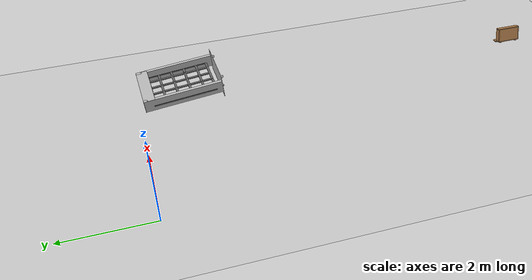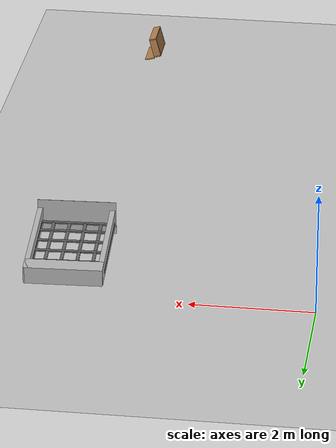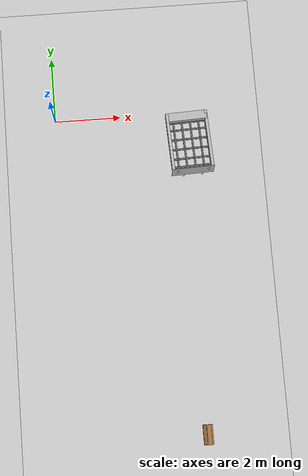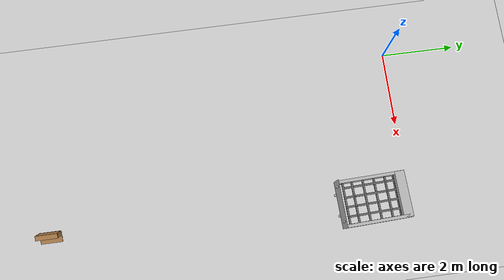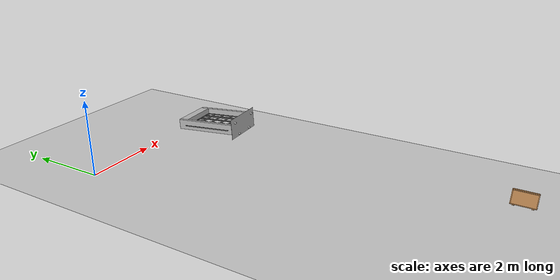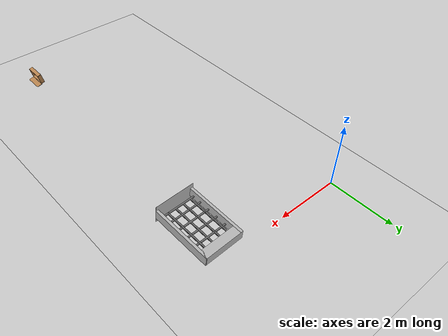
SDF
<sdf version="1.6">
 <world name="default">
  <model name="ground_plane">
   <static>1</static>
   <link name="link">
    <collision name="collision">
     <geometry><plane><normal>0 0 1</normal><size>100 100</size></plane></geometry>
     <surface><friction><ode><mu>100</mu><mu2>50</mu2></ode></friction></surface>
    </collision>
    <visual name="visual">
     <cast_shadows>0</cast_shadows>
     <geometry><plane><normal>0 0 1</normal><size>100 100</size></plane></geometry>
     <material>
      <script><uri>file://media/materials/scripts/gazebo.material</uri><name>Gazebo/Grey</name></script>
     </material>
    </visual>
   </link>
  </model>
  <model name="frc2016_portcullis">
   <link name="base">
    <inertial>
     <mass>50</mass>
     <pose>0 0 1.02941 0 -0 0</pose>
     <inertia><ixx>3.81711</ixx><ixy>0</ixy><ixz>0</ixz><iyy>4.87698</iyy><iyz>0</iyz><izz>1.6283</izz></inertia>
    </inertial>
    <visual name="platform">
     <pose>0 0 0.07284 0 -0 0</pose>
     <geometry><box><size>1.27 0.5842 0.003175</size></box></geometry>
    </visual>
    <collision name="platform">
     <pose>0 0 0.07284 0 -0 0</pose>
     <geometry><box><size>1.27 0.5842 0.003175</size></box></geometry>
    </collision>
    <visual name="left_column">
     <pose>0.59284 0 0.99042 0 -0 0</pose>
     <geometry><box><size>0.08375 0.28575 1.83198</size></box></geometry>
    </visual>
    <collision name="left_column">
     <pose>0.59284 0 0.99042 0 -0 0</pose>
     <geometry><box><size>0.08375 0.28575 1.83198</size></box></geometry>
    </collision>
    <visual name="right_column">
     <pose>-0.57759 0 0.99042 0 -0 0</pose>
     <geometry><box><size>0.08375 0.28575 1.83198</size></box></geometry>
    </visual>
    <collision name="right_column">
     <pose>-0.57759 0 0.99042 0 -0 0</pose>
     <geometry><box><size>0.08375 0.28575 1.83198</size></box></geometry>
    </collision>
    <visual name="top">
     <pose>-0.00034 0 1.77722 0 -0 0</pose>
     <geometry><box><size>1.22962 0.28575 0.26657</size></box></geometry>
    </visual>
    <collision name="top">
     <pose>-0.00034 0 1.77722 0 -0 0</pose>
     <geometry><box><size>1.22962 0.28575 0.26657</size></box></geometry>
    </collision>
    <visual name="castor1">
     <pose>-0.45651 -0.16234 0.03272 0 -0 0</pose>
     <geometry><sphere><radius>0.03272</radius></sphere></geometry>
    </visual>
    <collision name="castor1">
     <pose>-0.45651 -0.16234 0.03272 0 -0 0</pose>
     <geometry><sphere><radius>0.03272</radius></sphere></geometry>
    </collision>
    <visual name="castor2">
     <pose>-0.27883 0.21836 0.03272 0 -0 0</pose>
     <geometry><sphere><radius>0.03272</radius></sphere></geometry>
    </visual>
    <collision name="castor2">
     <pose>-0.27883 0.21836 0.03272 0 -0 0</pose>
     <geometry><sphere><radius>0.03272</radius></sphere></geometry>
    </collision>
    <visual name="castor3">
     <pose>0.28083 0.21906 0.03272 0 -0 0</pose>
     <geometry><sphere><radius>0.03272</radius></sphere></geometry>
    </visual>
    <collision name="castor3">
     <pose>0.28083 0.21906 0.03272 0 -0 0</pose>
     <geometry><sphere><radius>0.03272</radius></sphere></geometry>
    </collision>
    <visual name="castor4">
     <pose>0.45871 -0.16186 0.03272 0 -0 0</pose>
     <geometry><sphere><radius>0.03272</radius></sphere></geometry>
    </visual>
    <collision name="castor4">
     <pose>0.45871 -0.16186 0.03272 0 -0 0</pose>
     <geometry><sphere><radius>0.03272</radius></sphere></geometry>
    </collision>
   </link>
   <link name="gate">
    <pose>-0.0287 0.02885 0.93327 0 -0 0</pose>
    <inertial>
     <mass>2</mass>
     <inertia><ixx>3.81711</ixx><ixy>0</ixy><ixz>0</ixz><iyy>4.87698</iyy><iyz>0</iyz><izz>1.6283</izz></inertia>
    </inertial>
    <collision name="collision"><geometry><box><size>1.1938 0.02496 1.45732</size></box></geometry></collision>
    <visual name="horz_1">
     <pose>0 0 -0.70326 0 -0 0</pose>
     <geometry><box><size>1.1938 0.02496 0.0508</size></box></geometry>
     <material><ambient>0.4 0.4 0.4 1</ambient><diffuse>0.4 0.4 0.4 1</diffuse></material>
    </visual>
    <visual name="horz_2">
     <pose>0 0 -0.44926 0 -0 0</pose>
     <geometry><box><size>1.1938 0.02496 0.0508</size></box></geometry>
     <material><ambient>0.4 0.4 0.4 1</ambient><diffuse>0.4 0.4 0.4 1</diffuse></material>
    </visual>
    <visual name="horz_3">
     <pose>0 0 -0.14517 0 -0 0</pose>
     <geometry><box><size>1.1938 0.02496 0.0508</size></box></geometry>
     <material><ambient>0.4 0.4 0.4 1</ambient><diffuse>0.4 0.4 0.4 1</diffuse></material>
    </visual>
    <visual name="horz_4">
     <pose>0 0 0.16034 0 -0 0</pose>
     <geometry><box><size>1.1938 0.02496 0.0508</size></box></geometry>
     <material><ambient>0.4 0.4 0.4 1</ambient><diffuse>0.4 0.4 0.4 1</diffuse></material>
    </visual>
    <visual name="horz_5">
     <pose>0 0 0.46514 0 -0 0</pose>
     <geometry><box><size>1.1938 0.02496 0.0508</size></box></geometry>
     <material><ambient>0.4 0.4 0.4 1</ambient><diffuse>0.4 0.4 0.4 1</diffuse></material>
    </visual>
    <visual name="horz_6">
     <pose>0 0 0.72994 0 -0 0</pose>
     <geometry><box><size>1.1938 0.02496 0.0508</size></box></geometry>
     <material><ambient>0.4 0.4 0.4 1</ambient><diffuse>0.4 0.4 0.4 1</diffuse></material>
    </visual>
    <visual name="vert_1">
     <pose>-0.58448 0 0 0 -0 0</pose>
     <geometry><box><size>0.02495 0.02496 1.45732</size></box></geometry>
     <material><ambient>0.4 0.4 0.4 1</ambient><diffuse>0.4 0.4 0.4 1</diffuse></material>
    </visual>
    <visual name="vert_2">
     <pose>-0.38128 0 0 0 -0 0</pose>
     <geometry><box><size>0.0508 0.02496 1.45732</size></box></geometry>
     <material><ambient>0.4 0.4 0.4 1</ambient><diffuse>0.4 0.4 0.4 1</diffuse></material>
    </visual>
    <visual name="vert_3">
     <pose>-0.12728 0 0 0 -0 0</pose>
     <geometry><box><size>0.0508 0.02496 1.45732</size></box></geometry>
     <material><ambient>0.4 0.4 0.4 1</ambient><diffuse>0.4 0.4 0.4 1</diffuse></material>
    </visual>
    <visual name="vert_4">
     <pose>0.12672 0 0 0 -0 0</pose>
     <geometry><box><size>0.0508 0.02496 1.45732</size></box></geometry>
     <material><ambient>0.4 0.4 0.4 1</ambient><diffuse>0.4 0.4 0.4 1</diffuse></material>
    </visual>
    <visual name="vert_5">
     <pose>0.38072 0 0 0 -0 0</pose>
     <geometry><box><size>0.0508 0.02496 1.45732</size></box></geometry>
     <material><ambient>0.4 0.4 0.4 1</ambient><diffuse>0.4 0.4 0.4 1</diffuse></material>
    </visual>
    <visual name="vert_6">
     <pose>0.58392 0 0 0 -0 0</pose>
     <geometry><box><size>0.02495 0.02496 1.45732</size></box></geometry>
     <material><ambient>0.4 0.4 0.4 1</ambient><diffuse>0.4 0.4 0.4 1</diffuse></material>
    </visual>
   </link>
   <joint name="joint" type="prismatic">
    <parent>base</parent>
    <child>gate</child>
    <axis>
     <xyz>0 0 1</xyz>
     <limit><lower>0</lower><upper>1</upper></limit>
     <use_parent_model_frame>0</use_parent_model_frame>
     <dynamics><spring_reference>0</spring_reference><spring_stiffness>0</spring_stiffness></dynamics>
    </axis>
   </joint>
   <pose>4.05595 -1.99454 0.447169 -1.65189 -0 0.040426</pose>
  </model>
  <model name="wooden_case">
   <link name="base">
    <pose>0 0 0.024 0 -0 0</pose>
    <inertial>
     <pose>-0.022184 0 0.171592 0 -0 0</pose>
     <mass>3.96264</mass>
     <inertia>
      <ixx>0.213536</ixx>
      <ixy>0</ixy>
      <ixz>0.000779377</ixz>
      <iyy>0.0708943</iyy>
      <iyz>0</iyz>
      <izz>0.154604</izz>
     </inertia>
    </inertial>
    <collision name="collision_back">
     <pose>-0.053975 0 0.1778 0 -0 0</pose>
     <geometry><box><size>0.01905 0.5461 0.3175</size></box></geometry>
     <surface>
      <contact>
       <poissons_ratio>0.347</poissons_ratio>
       <elastic_modulus>8.8e+09</elastic_modulus>
       <ode><kp>100000</kp><kd>100</kd><max_vel>100</max_vel><min_depth>0.001</min_depth></ode>
      </contact>
      <friction>
       <torsional>
        <coefficient>1</coefficient>
        <use_patch_radius>0</use_patch_radius>
        <surface_radius>0.01</surface_radius>
       </torsional>
      </friction>
     </surface>
    </collision>
    <visual name="visual_back">
     <pose>-0.053975 0 0.1778 0 -0 0</pose>
     <geometry><box><size>0.01905 0.5461 0.3175</size></box></geometry>
     <material>
      <script><uri>file://media/materials/scripts/gazebo.material</uri><name>Gazebo/Wood</name></script>
     </material>
    </visual>
    <collision name="collision_bottom">
     <pose>0 0 0.009525 0 -0 0</pose>
     <geometry><box><size>0.127 0.5842 0.01905</size></box></geometry>
     <surface>
      <contact>
       <poissons_ratio>0.347</poissons_ratio>
       <elastic_modulus>8.8e+09</elastic_modulus>
       <ode><kp>100000</kp><kd>100</kd><max_vel>100</max_vel><min_depth>0.001</min_depth></ode>
      </contact>
      <friction>
       <torsional>
        <coefficient>1</coefficient>
        <use_patch_radius>0</use_patch_radius>
        <surface_radius>0.01</surface_radius>
       </torsional>
      </friction>
     </surface>
    </collision>
    <visual name="visual_bottom">
     <pose>0 0 0.009525 0 -0 0</pose>
     <geometry><box><size>0.127 0.5842 0.01905</size></box></geometry>
     <material>
      <script><uri>file://media/materials/scripts/gazebo.material</uri><name>Gazebo/Wood</name></script>
     </material>
    </visual>
    <collision name="collision_top">
     <pose>0 0 0.346075 0 -0 0</pose>
     <geometry><box><size>0.127 0.5842 0.01905</size></box></geometry>
     <surface>
      <contact>
       <poissons_ratio>0.347</poissons_ratio>
       <elastic_modulus>8.8e+09</elastic_modulus>
       <ode><kp>100000</kp><kd>100</kd><max_vel>100</max_vel><min_depth>0.001</min_depth></ode>
      </contact>
      <friction>
       <torsional>
        <coefficient>1</coefficient>
        <use_patch_radius>0</use_patch_radius>
        <surface_radius>0.01</surface_radius>
       </torsional>
      </friction>
     </surface>
    </collision>
    <visual name="visual_top">
     <pose>0 0 0.346075 0 -0 0</pose>
     <geometry><box><size>0.127 0.5842 0.01905</size></box></geometry>
     <material>
      <script><uri>file://media/materials/scripts/gazebo.material</uri><name>Gazebo/Wood</name></script>
     </material>
    </visual>
    <collision name="collision_left">
     <pose>0 -0.282575 0.1778 0 -0 0</pose>
     <geometry><box><size>0.127 0.01905 0.3175</size></box></geometry>
     <surface>
      <contact>
       <poissons_ratio>0.347</poissons_ratio>
       <elastic_modulus>8.8e+09</elastic_modulus>
       <ode><kp>100000</kp><kd>100</kd><max_vel>100</max_vel><min_depth>0.001</min_depth></ode>
      </contact>
      <friction>
       <torsional>
        <coefficient>1</coefficient>
        <use_patch_radius>0</use_patch_radius>
        <surface_radius>0.01</surface_radius>
       </torsional>
      </friction>
     </surface>
    </collision>
    <visual name="visual_left">
     <pose>0 -0.282575 0.1778 0 -0 0</pose>
     <geometry><box><size>0.127 0.01905 0.3175</size></box></geometry>
     <material>
      <script><uri>file://media/materials/scripts/gazebo.material</uri><name>Gazebo/Wood</name></script>
     </material>
    </visual>
    <collision name="collision_right">
     <pose>0 0.282575 0.1778 0 -0 0</pose>
     <geometry><box><size>0.127 0.01905 0.3175</size></box></geometry>
     <surface>
      <contact>
       <poissons_ratio>0.347</poissons_ratio>
       <elastic_modulus>8.8e+09</elastic_modulus>
       <ode><kp>100000</kp><kd>100</kd><max_vel>100</max_vel><min_depth>0.001</min_depth></ode>
      </contact>
      <friction>
       <torsional>
        <coefficient>1</coefficient>
        <use_patch_radius>0</use_patch_radius>
        <surface_radius>0.01</surface_radius>
       </torsional>
      </friction>
     </surface>
    </collision>
    <visual name="visual_right">
     <pose>0 0.282575 0.1778 0 -0 0</pose>
     <geometry><box><size>0.127 0.01905 0.3175</size></box></geometry>
     <material>
      <script><uri>file://media/materials/scripts/gazebo.material</uri><name>Gazebo/Wood</name></script>
     </material>
    </visual>
    <collision name="collision_block_left">
     <pose>0.0095 -0.2151 -0.012 0 -0 0</pose>
     <geometry><box><size>0.108 0.05 0.024</size></box></geometry>
     <surface>
      <contact>
       <poissons_ratio>0.347</poissons_ratio>
       <elastic_modulus>8.8e+09</elastic_modulus>
       <ode><kp>100000</kp><kd>100</kd><max_vel>100</max_vel><min_depth>0.001</min_depth></ode>
      </contact>
      <friction>
       <torsional>
        <coefficient>1</coefficient>
        <use_patch_radius>0</use_patch_radius>
        <surface_radius>0.01</surface_radius>
       </torsional>
      </friction>
     </surface>
    </collision>
    <visual name="visual_block_left">
     <pose>0.0095 -0.2151 -0.012 0 -0 0</pose>
     <geometry><box><size>0.108 0.05 0.024</size></box></geometry>
     <material>
      <script><uri>file://media/materials/scripts/gazebo.material</uri><name>Gazebo/Wood</name></script>
     </material>
    </visual>
    <collision name="collision_block_right">
     <pose>0.0095 0.2151 -0.012 0 -0 0</pose>
     <geometry><box><size>0.108 0.05 0.024</size></box></geometry>
     <surface>
      <contact>
       <poissons_ratio>0.347</poissons_ratio>
       <elastic_modulus>8.8e+09</elastic_modulus>
       <ode><kp>100000</kp><kd>100</kd><max_vel>100</max_vel><min_depth>0.001</min_depth></ode>
      </contact>
      <friction>
       <torsional>
        <coefficient>1</coefficient>
        <use_patch_radius>0</use_patch_radius>
        <surface_radius>0.01</surface_radius>
       </torsional>
      </friction>
     </surface>
    </collision>
    <visual name="visual_block_right">
     <pose>0.0095 0.2151 -0.012 0 -0 0</pose>
     <geometry><box><size>0.108 0.05 0.024</size></box></geometry>
     <material>
      <script><uri>file://media/materials/scripts/gazebo.material</uri><name>Gazebo/Wood</name></script>
     </material>
    </visual>
   </link>
   <link name="lid">
    <pose>0.243775 0 0.009525 0 -0 0</pose>
    <inertial>
     <mass>1.97874</mass>
     <inertia>
      <ixx>0.0563367</ixx>
      <ixy>0</ixy>
      <ixz>0</ixz>
      <iyy>0.020911</iyy>
      <iyz>0</iyz>
      <izz>0.0771281</izz>
     </inertia>
    </inertial>
    <collision name="collision">
     <geometry><box><size>0.3556 0.5842 0.01905</size></box></geometry>
     <surface>
      <contact>
       <poissons_ratio>0.347</poissons_ratio>
       <elastic_modulus>8.8e+09</elastic_modulus>
       <ode><kp>100000</kp><kd>100</kd><max_vel>100</max_vel><min_depth>0.001</min_depth></ode>
      </contact>
      <friction>
       <torsional>
        <coefficient>1</coefficient>
        <use_patch_radius>0</use_patch_radius>
        <surface_radius>0.01</surface_radius>
       </torsional>
      </friction>
     </surface>
    </collision>
    <visual name="visual">
     <geometry><box><size>0.3556 0.5842 0.01905</size></box></geometry>
     <material>
      <script><uri>file://media/materials/scripts/gazebo.material</uri><name>Gazebo/Wood</name></script>
     </material>
    </visual>
    <visual name="tee_nut_1">
     <pose>0.122 -0.216 0 0 -0 0</pose>
     <geometry><cylinder><radius>0.00635</radius><length>0.0192405</length></cylinder></geometry>
     <material>
      <script><uri>file://media/materials/scripts/gazebo.material</uri><name>Gazebo/Grey</name></script>
     </material>
    </visual>
    <visual name="tee_nut_2">
     <pose>0.122 -0.088 0 0 -0 0</pose>
     <geometry><cylinder><radius>0.00635</radius><length>0.0192405</length></cylinder></geometry>
     <material>
      <script><uri>file://media/materials/scripts/gazebo.material</uri><name>Gazebo/Grey</name></script>
     </material>
    </visual>
    <visual name="tee_nut_3">
     <pose>0.122 0.088 0 0 -0 0</pose>
     <geometry><cylinder><radius>0.00635</radius><length>0.0192405</length></cylinder></geometry>
     <material>
      <script><uri>file://media/materials/scripts/gazebo.material</uri><name>Gazebo/Grey</name></script>
     </material>
    </visual>
    <visual name="tee_nut_4">
     <pose>0.122 0.216 0 0 -0 0</pose>
     <geometry><cylinder><radius>0.00635</radius><length>0.0192405</length></cylinder></geometry>
     <material>
      <script><uri>file://media/materials/scripts/gazebo.material</uri><name>Gazebo/Grey</name></script>
     </material>
    </visual>
   </link>
   <joint name="lid_hinge" type="revolute">
    <pose>-0.1778 0 0.01905 0 -0 0</pose>
    <parent>base</parent>
    <child>lid</child>
    <axis>
     <xyz>0 1 0</xyz>
     <limit><upper>0.523599</upper><lower>-1.5708</lower></limit>
     <use_parent_model_frame>0</use_parent_model_frame>
     <dynamics><spring_reference>0</spring_reference><spring_stiffness>0</spring_stiffness></dynamics>
    </axis>
   </joint>
   <pose>3.78 -9.68655 0.035175 -0.000328 0.265462 -0.000152</pose>
  </model>
 </world>
</sdf>
